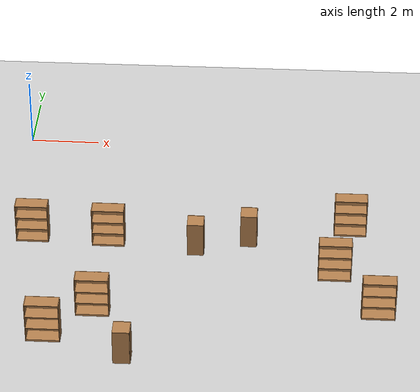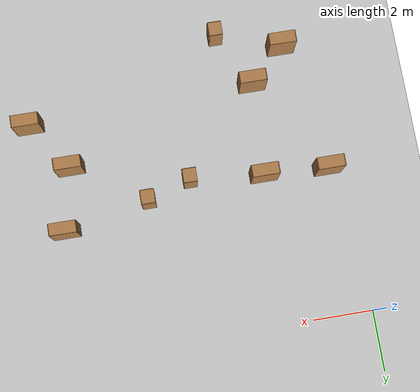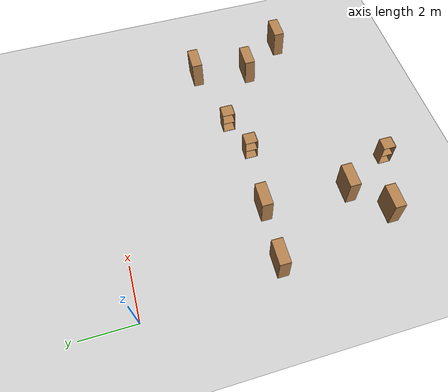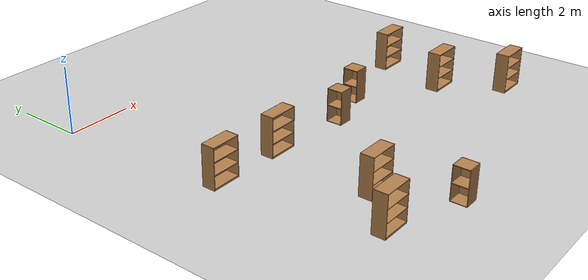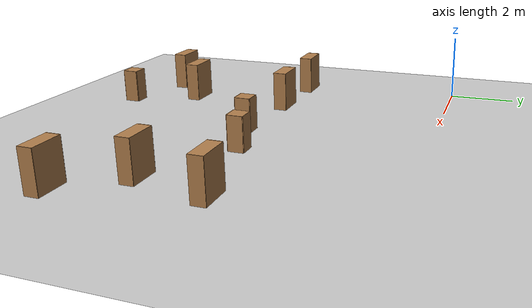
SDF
<sdf version="1.6">
 <world name="default">
  <model name="ground_plane">
   <static>1</static>
   <link name="link">
    <collision name="collision">
     <geometry><plane><normal>0 0 1</normal><size>100 100</size></plane></geometry>
     <surface><friction><ode><mu>100</mu><mu2>50</mu2></ode></friction></surface>
    </collision>
    <visual name="visual">
     <cast_shadows>0</cast_shadows>
     <geometry><plane><normal>0 0 1</normal><size>100 100</size></plane></geometry>
     <material>
      <script><uri>file://media/materials/scripts/gazebo.material</uri><name>Gazebo/Grey</name></script>
     </material>
    </visual>
   </link>
  </model>
  <model name="bookshelf_11">
   <static>1</static>
   <link name="link">
    <inertial><mass>1</mass></inertial>
    <collision name="back">
     <pose>0 0.005 0.6 0 -0 0</pose>
     <geometry><box><size>0.9 0.01 1.2</size></box></geometry>
    </collision>
    <visual name="visual1">
     <pose>0 0.005 0.6 0 -0 0</pose>
     <geometry><box><size>0.9 0.01 1.2</size></box></geometry>
     <material>
      <script><uri>file://media/materials/scripts/gazebo.material</uri><name>Gazebo/Wood</name></script>
     </material>
    </visual>
    <collision name="left_side">
     <pose>0.45 -0.195 0.6 0 -0 0</pose>
     <geometry><box><size>0.02 0.4 1.2</size></box></geometry>
    </collision>
    <visual name="visual2">
     <pose>0.45 -0.195 0.6 0 -0 0</pose>
     <geometry><box><size>0.02 0.4 1.2</size></box></geometry>
     <material>
      <script><uri>file://media/materials/scripts/gazebo.material</uri><name>Gazebo/Wood</name></script>
     </material>
    </visual>
    <collision name="right_side">
     <pose>-0.45 -0.195 0.6 0 -0 0</pose>
     <geometry><box><size>0.02 0.4 1.2</size></box></geometry>
    </collision>
    <visual name="visual3">
     <pose>-0.45 -0.195 0.6 0 -0 0</pose>
     <geometry><box><size>0.02 0.4 1.2</size></box></geometry>
     <material>
      <script><uri>file://media/materials/scripts/gazebo.material</uri><name>Gazebo/Wood</name></script>
     </material>
    </visual>
    <collision name="bottom">
     <pose>0 -0.195 0.03 0 -0 0</pose>
     <geometry><box><size>0.88 0.4 0.06</size></box></geometry>
    </collision>
    <visual name="visual4">
     <pose>0 -0.195 0.03 0 -0 0</pose>
     <geometry><box><size>0.88 0.4 0.06</size></box></geometry>
     <material>
      <script><uri>file://media/materials/scripts/gazebo.material</uri><name>Gazebo/Wood</name></script>
     </material>
    </visual>
    <collision name="top">
     <pose>0 -0.195 1.19 0 -0 0</pose>
     <geometry><box><size>0.88 0.4 0.02</size></box></geometry>
    </collision>
    <visual name="visual5">
     <pose>0 -0.195 1.19 0 -0 0</pose>
     <geometry><box><size>0.88 0.4 0.02</size></box></geometry>
     <material>
      <script><uri>file://media/materials/scripts/gazebo.material</uri><name>Gazebo/Wood</name></script>
     </material>
    </visual>
    <collision name="low_shelf">
     <pose>0 -0.195 0.43 0 -0 0</pose>
     <geometry><box><size>0.88 0.4 0.02</size></box></geometry>
    </collision>
    <visual name="visual6">
     <pose>0 -0.195 0.43 0 -0 0</pose>
     <geometry><box><size>0.88 0.4 0.02</size></box></geometry>
     <material>
      <script><uri>file://media/materials/scripts/gazebo.material</uri><name>Gazebo/Wood</name></script>
     </material>
    </visual>
    <collision name="high_shelf">
     <pose>0 -0.195 0.8 0 -0 0</pose>
     <geometry><box><size>0.88 0.4 0.02</size></box></geometry>
    </collision>
    <visual name="visual7">
     <pose>0 -0.195 0.8 0 -0 0</pose>
     <geometry><box><size>0.88 0.4 0.02</size></box></geometry>
     <material>
      <script><uri>file://media/materials/scripts/gazebo.material</uri><name>Gazebo/Wood</name></script>
     </material>
    </visual>
   </link>
   <pose>9.58566 -3.99306 0 0 -0 0</pose>
  </model>
  <model name="bookshelf_12">
   <static>1</static>
   <link name="link">
    <inertial><mass>1</mass></inertial>
    <collision name="back">
     <pose>0 0.005 0.6 0 -0 0</pose>
     <geometry><box><size>0.9 0.01 1.2</size></box></geometry>
    </collision>
    <visual name="visual1">
     <pose>0 0.005 0.6 0 -0 0</pose>
     <geometry><box><size>0.9 0.01 1.2</size></box></geometry>
     <material>
      <script><uri>file://media/materials/scripts/gazebo.material</uri><name>Gazebo/Wood</name></script>
     </material>
    </visual>
    <collision name="left_side">
     <pose>0.45 -0.195 0.6 0 -0 0</pose>
     <geometry><box><size>0.02 0.4 1.2</size></box></geometry>
    </collision>
    <visual name="visual2">
     <pose>0.45 -0.195 0.6 0 -0 0</pose>
     <geometry><box><size>0.02 0.4 1.2</size></box></geometry>
     <material>
      <script><uri>file://media/materials/scripts/gazebo.material</uri><name>Gazebo/Wood</name></script>
     </material>
    </visual>
    <collision name="right_side">
     <pose>-0.45 -0.195 0.6 0 -0 0</pose>
     <geometry><box><size>0.02 0.4 1.2</size></box></geometry>
    </collision>
    <visual name="visual3">
     <pose>-0.45 -0.195 0.6 0 -0 0</pose>
     <geometry><box><size>0.02 0.4 1.2</size></box></geometry>
     <material>
      <script><uri>file://media/materials/scripts/gazebo.material</uri><name>Gazebo/Wood</name></script>
     </material>
    </visual>
    <collision name="bottom">
     <pose>0 -0.195 0.03 0 -0 0</pose>
     <geometry><box><size>0.88 0.4 0.06</size></box></geometry>
    </collision>
    <visual name="visual4">
     <pose>0 -0.195 0.03 0 -0 0</pose>
     <geometry><box><size>0.88 0.4 0.06</size></box></geometry>
     <material>
      <script><uri>file://media/materials/scripts/gazebo.material</uri><name>Gazebo/Wood</name></script>
     </material>
    </visual>
    <collision name="top">
     <pose>0 -0.195 1.19 0 -0 0</pose>
     <geometry><box><size>0.88 0.4 0.02</size></box></geometry>
    </collision>
    <visual name="visual5">
     <pose>0 -0.195 1.19 0 -0 0</pose>
     <geometry><box><size>0.88 0.4 0.02</size></box></geometry>
     <material>
      <script><uri>file://media/materials/scripts/gazebo.material</uri><name>Gazebo/Wood</name></script>
     </material>
    </visual>
    <collision name="low_shelf">
     <pose>0 -0.195 0.43 0 -0 0</pose>
     <geometry><box><size>0.88 0.4 0.02</size></box></geometry>
    </collision>
    <visual name="visual6">
     <pose>0 -0.195 0.43 0 -0 0</pose>
     <geometry><box><size>0.88 0.4 0.02</size></box></geometry>
     <material>
      <script><uri>file://media/materials/scripts/gazebo.material</uri><name>Gazebo/Wood</name></script>
     </material>
    </visual>
    <collision name="high_shelf">
     <pose>0 -0.195 0.8 0 -0 0</pose>
     <geometry><box><size>0.88 0.4 0.02</size></box></geometry>
    </collision>
    <visual name="visual7">
     <pose>0 -0.195 0.8 0 -0 0</pose>
     <geometry><box><size>0.88 0.4 0.02</size></box></geometry>
     <material>
      <script><uri>file://media/materials/scripts/gazebo.material</uri><name>Gazebo/Wood</name></script>
     </material>
    </visual>
   </link>
   <pose>9.15205 -6.10619 0 0 -0 0</pose>
  </model>
  <model name="bookshelf_13">
   <static>1</static>
   <link name="link">
    <inertial><mass>1</mass></inertial>
    <collision name="back">
     <pose>0 0.005 0.6 0 -0 0</pose>
     <geometry><box><size>0.9 0.01 1.2</size></box></geometry>
    </collision>
    <visual name="visual1">
     <pose>0 0.005 0.6 0 -0 0</pose>
     <geometry><box><size>0.9 0.01 1.2</size></box></geometry>
     <material>
      <script><uri>file://media/materials/scripts/gazebo.material</uri><name>Gazebo/Wood</name></script>
     </material>
    </visual>
    <collision name="left_side">
     <pose>0.45 -0.195 0.6 0 -0 0</pose>
     <geometry><box><size>0.02 0.4 1.2</size></box></geometry>
    </collision>
    <visual name="visual2">
     <pose>0.45 -0.195 0.6 0 -0 0</pose>
     <geometry><box><size>0.02 0.4 1.2</size></box></geometry>
     <material>
      <script><uri>file://media/materials/scripts/gazebo.material</uri><name>Gazebo/Wood</name></script>
     </material>
    </visual>
    <collision name="right_side">
     <pose>-0.45 -0.195 0.6 0 -0 0</pose>
     <geometry><box><size>0.02 0.4 1.2</size></box></geometry>
    </collision>
    <visual name="visual3">
     <pose>-0.45 -0.195 0.6 0 -0 0</pose>
     <geometry><box><size>0.02 0.4 1.2</size></box></geometry>
     <material>
      <script><uri>file://media/materials/scripts/gazebo.material</uri><name>Gazebo/Wood</name></script>
     </material>
    </visual>
    <collision name="bottom">
     <pose>0 -0.195 0.03 0 -0 0</pose>
     <geometry><box><size>0.88 0.4 0.06</size></box></geometry>
    </collision>
    <visual name="visual4">
     <pose>0 -0.195 0.03 0 -0 0</pose>
     <geometry><box><size>0.88 0.4 0.06</size></box></geometry>
     <material>
      <script><uri>file://media/materials/scripts/gazebo.material</uri><name>Gazebo/Wood</name></script>
     </material>
    </visual>
    <collision name="top">
     <pose>0 -0.195 1.19 0 -0 0</pose>
     <geometry><box><size>0.88 0.4 0.02</size></box></geometry>
    </collision>
    <visual name="visual5">
     <pose>0 -0.195 1.19 0 -0 0</pose>
     <geometry><box><size>0.88 0.4 0.02</size></box></geometry>
     <material>
      <script><uri>file://media/materials/scripts/gazebo.material</uri><name>Gazebo/Wood</name></script>
     </material>
    </visual>
    <collision name="low_shelf">
     <pose>0 -0.195 0.43 0 -0 0</pose>
     <geometry><box><size>0.88 0.4 0.02</size></box></geometry>
    </collision>
    <visual name="visual6">
     <pose>0 -0.195 0.43 0 -0 0</pose>
     <geometry><box><size>0.88 0.4 0.02</size></box></geometry>
     <material>
      <script><uri>file://media/materials/scripts/gazebo.material</uri><name>Gazebo/Wood</name></script>
     </material>
    </visual>
    <collision name="high_shelf">
     <pose>0 -0.195 0.8 0 -0 0</pose>
     <geometry><box><size>0.88 0.4 0.02</size></box></geometry>
    </collision>
    <visual name="visual7">
     <pose>0 -0.195 0.8 0 -0 0</pose>
     <geometry><box><size>0.88 0.4 0.02</size></box></geometry>
     <material>
      <script><uri>file://media/materials/scripts/gazebo.material</uri><name>Gazebo/Wood</name></script>
     </material>
    </visual>
   </link>
   <pose>10.3318 -7.74978 0 0 -0 0</pose>
  </model>
  <model name="bookshelf_14">
   <static>1</static>
   <link name="link">
    <inertial><mass>1</mass></inertial>
    <collision name="back">
     <pose>0 0.005 0.6 0 -0 0</pose>
     <geometry><box><size>0.9 0.01 1.2</size></box></geometry>
    </collision>
    <visual name="visual1">
     <pose>0 0.005 0.6 0 -0 0</pose>
     <geometry><box><size>0.9 0.01 1.2</size></box></geometry>
     <material>
      <script><uri>file://media/materials/scripts/gazebo.material</uri><name>Gazebo/Wood</name></script>
     </material>
    </visual>
    <collision name="left_side">
     <pose>0.45 -0.195 0.6 0 -0 0</pose>
     <geometry><box><size>0.02 0.4 1.2</size></box></geometry>
    </collision>
    <visual name="visual2">
     <pose>0.45 -0.195 0.6 0 -0 0</pose>
     <geometry><box><size>0.02 0.4 1.2</size></box></geometry>
     <material>
      <script><uri>file://media/materials/scripts/gazebo.material</uri><name>Gazebo/Wood</name></script>
     </material>
    </visual>
    <collision name="right_side">
     <pose>-0.45 -0.195 0.6 0 -0 0</pose>
     <geometry><box><size>0.02 0.4 1.2</size></box></geometry>
    </collision>
    <visual name="visual3">
     <pose>-0.45 -0.195 0.6 0 -0 0</pose>
     <geometry><box><size>0.02 0.4 1.2</size></box></geometry>
     <material>
      <script><uri>file://media/materials/scripts/gazebo.material</uri><name>Gazebo/Wood</name></script>
     </material>
    </visual>
    <collision name="bottom">
     <pose>0 -0.195 0.03 0 -0 0</pose>
     <geometry><box><size>0.88 0.4 0.06</size></box></geometry>
    </collision>
    <visual name="visual4">
     <pose>0 -0.195 0.03 0 -0 0</pose>
     <geometry><box><size>0.88 0.4 0.06</size></box></geometry>
     <material>
      <script><uri>file://media/materials/scripts/gazebo.material</uri><name>Gazebo/Wood</name></script>
     </material>
    </visual>
    <collision name="top">
     <pose>0 -0.195 1.19 0 -0 0</pose>
     <geometry><box><size>0.88 0.4 0.02</size></box></geometry>
    </collision>
    <visual name="visual5">
     <pose>0 -0.195 1.19 0 -0 0</pose>
     <geometry><box><size>0.88 0.4 0.02</size></box></geometry>
     <material>
      <script><uri>file://media/materials/scripts/gazebo.material</uri><name>Gazebo/Wood</name></script>
     </material>
    </visual>
    <collision name="low_shelf">
     <pose>0 -0.195 0.43 0 -0 0</pose>
     <geometry><box><size>0.88 0.4 0.02</size></box></geometry>
    </collision>
    <visual name="visual6">
     <pose>0 -0.195 0.43 0 -0 0</pose>
     <geometry><box><size>0.88 0.4 0.02</size></box></geometry>
     <material>
      <script><uri>file://media/materials/scripts/gazebo.material</uri><name>Gazebo/Wood</name></script>
     </material>
    </visual>
    <collision name="high_shelf">
     <pose>0 -0.195 0.8 0 -0 0</pose>
     <geometry><box><size>0.88 0.4 0.02</size></box></geometry>
    </collision>
    <visual name="visual7">
     <pose>0 -0.195 0.8 0 -0 0</pose>
     <geometry><box><size>0.88 0.4 0.02</size></box></geometry>
     <material>
      <script><uri>file://media/materials/scripts/gazebo.material</uri><name>Gazebo/Wood</name></script>
     </material>
    </visual>
   </link>
   <pose>2.65393 -8.01215 0 0 -0 0</pose>
  </model>
  <model name="bookshelf_15">
   <static>1</static>
   <link name="link">
    <inertial><mass>1</mass></inertial>
    <collision name="back">
     <pose>0 0.005 0.6 0 -0 0</pose>
     <geometry><box><size>0.9 0.01 1.2</size></box></geometry>
    </collision>
    <visual name="visual1">
     <pose>0 0.005 0.6 0 -0 0</pose>
     <geometry><box><size>0.9 0.01 1.2</size></box></geometry>
     <material>
      <script><uri>file://media/materials/scripts/gazebo.material</uri><name>Gazebo/Wood</name></script>
     </material>
    </visual>
    <collision name="left_side">
     <pose>0.45 -0.195 0.6 0 -0 0</pose>
     <geometry><box><size>0.02 0.4 1.2</size></box></geometry>
    </collision>
    <visual name="visual2">
     <pose>0.45 -0.195 0.6 0 -0 0</pose>
     <geometry><box><size>0.02 0.4 1.2</size></box></geometry>
     <material>
      <script><uri>file://media/materials/scripts/gazebo.material</uri><name>Gazebo/Wood</name></script>
     </material>
    </visual>
    <collision name="right_side">
     <pose>-0.45 -0.195 0.6 0 -0 0</pose>
     <geometry><box><size>0.02 0.4 1.2</size></box></geometry>
    </collision>
    <visual name="visual3">
     <pose>-0.45 -0.195 0.6 0 -0 0</pose>
     <geometry><box><size>0.02 0.4 1.2</size></box></geometry>
     <material>
      <script><uri>file://media/materials/scripts/gazebo.material</uri><name>Gazebo/Wood</name></script>
     </material>
    </visual>
    <collision name="bottom">
     <pose>0 -0.195 0.03 0 -0 0</pose>
     <geometry><box><size>0.88 0.4 0.06</size></box></geometry>
    </collision>
    <visual name="visual4">
     <pose>0 -0.195 0.03 0 -0 0</pose>
     <geometry><box><size>0.88 0.4 0.06</size></box></geometry>
     <material>
      <script><uri>file://media/materials/scripts/gazebo.material</uri><name>Gazebo/Wood</name></script>
     </material>
    </visual>
    <collision name="top">
     <pose>0 -0.195 1.19 0 -0 0</pose>
     <geometry><box><size>0.88 0.4 0.02</size></box></geometry>
    </collision>
    <visual name="visual5">
     <pose>0 -0.195 1.19 0 -0 0</pose>
     <geometry><box><size>0.88 0.4 0.02</size></box></geometry>
     <material>
      <script><uri>file://media/materials/scripts/gazebo.material</uri><name>Gazebo/Wood</name></script>
     </material>
    </visual>
    <collision name="low_shelf">
     <pose>0 -0.195 0.43 0 -0 0</pose>
     <geometry><box><size>0.88 0.4 0.02</size></box></geometry>
    </collision>
    <visual name="visual6">
     <pose>0 -0.195 0.43 0 -0 0</pose>
     <geometry><box><size>0.88 0.4 0.02</size></box></geometry>
     <material>
      <script><uri>file://media/materials/scripts/gazebo.material</uri><name>Gazebo/Wood</name></script>
     </material>
    </visual>
    <collision name="high_shelf">
     <pose>0 -0.195 0.8 0 -0 0</pose>
     <geometry><box><size>0.88 0.4 0.02</size></box></geometry>
    </collision>
    <visual name="visual7">
     <pose>0 -0.195 0.8 0 -0 0</pose>
     <geometry><box><size>0.88 0.4 0.02</size></box></geometry>
     <material>
      <script><uri>file://media/materials/scripts/gazebo.material</uri><name>Gazebo/Wood</name></script>
     </material>
    </visual>
   </link>
   <pose>1.45592 -9.16354 0 0 -0 0</pose>
  </model>
  <model name="cabinet_3">
   <static>1</static>
   <link name="cabinet_bottom_plate">
    <inertial>
     <pose>0 0 -1 0 -0 0</pose>
     <inertia><ixx>2.05</ixx><ixy>0</ixy><ixz>0</ixz><iyy>2.05</iyy><iyz>0</iyz><izz>2.05</izz></inertia>
     <mass>25</mass>
    </inertial>
    <collision name="cabinet_bottom_plate_geom">
     <pose>0 0 0.01 0 -0 0</pose>
     <geometry><box><size>0.45 0.45 0.02</size></box></geometry>
    </collision>
    <visual name="cabinet_bottom_plate_geom_visual">
     <pose>0 0 0.01 0 -0 0</pose>
     <geometry><box><size>0.45 0.45 0.02</size></box></geometry>
     <material>
      <script><uri>file://media/materials/scripts/gazebo.material</uri><name>Gazebo/Wood</name></script>
     </material>
    </visual>
    <collision name="cabinet_bottom_plate_geom_cabinet_back_plate">
     <pose>0.235 0 0.51 0 -0 0</pose>
     <geometry><box><size>0.02 0.45 1.02</size></box></geometry>
    </collision>
    <visual name="cabinet_bottom_plate_geom_cabinet_back_plate_visual">
     <pose>0.235 0 0.51 0 -0 0</pose>
     <geometry><box><size>0.02 0.45 1.02</size></box></geometry>
     <material>
      <script><uri>file://media/materials/scripts/gazebo.material</uri><name>Gazebo/Wood</name></script>
     </material>
    </visual>
    <collision name="cabinet_bottom_plate_geom_cabinet_left_plate">
     <pose>0 0.235 0.51 0 -0 0</pose>
     <geometry><box><size>0.45 0.02 1.02</size></box></geometry>
    </collision>
    <visual name="cabinet_bottom_plate_geom_cabinet_left_plate_visual">
     <pose>0 0.235 0.51 0 -0 0</pose>
     <geometry><box><size>0.45 0.02 1.02</size></box></geometry>
     <material>
      <script><uri>file://media/materials/scripts/gazebo.material</uri><name>Gazebo/Wood</name></script>
     </material>
    </visual>
    <collision name="cabinet_bottom_plate_geom_cabinet_middle_plate">
     <pose>0 0 0.51 0 -0 0</pose>
     <geometry><box><size>0.45 0.45 0.02</size></box></geometry>
    </collision>
    <visual name="cabinet_bottom_plate_geom_cabinet_middle_plate_visual">
     <pose>0 0 0.51 0 -0 0</pose>
     <geometry><box><size>0.45 0.45 0.02</size></box></geometry>
     <material>
      <script><uri>file://media/materials/scripts/gazebo.material</uri><name>Gazebo/Wood</name></script>
     </material>
    </visual>
    <collision name="cabinet_bottom_plate_geom_cabinet_right_plate">
     <pose>0 -0.235 0.51 0 -0 0</pose>
     <geometry><box><size>0.45 0.02 1.02</size></box></geometry>
    </collision>
    <visual name="cabinet_bottom_plate_geom_cabinet_right_plate_visual">
     <pose>0 -0.235 0.51 0 -0 0</pose>
     <geometry><box><size>0.45 0.02 1.02</size></box></geometry>
     <material>
      <script><uri>file://media/materials/scripts/gazebo.material</uri><name>Gazebo/Wood</name></script>
     </material>
    </visual>
    <collision name="cabinet_bottom_plate_geom_cabinet_top_plate">
     <pose>0 0 1.01 0 -0 0</pose>
     <geometry><box><size>0.45 0.45 0.02</size></box></geometry>
    </collision>
    <visual name="cabinet_bottom_plate_geom_cabinet_top_plate_visual">
     <pose>0 0 1.01 0 -0 0</pose>
     <geometry><box><size>0.45 0.45 0.02</size></box></geometry>
     <material>
      <script><uri>file://media/materials/scripts/gazebo.material</uri><name>Gazebo/Wood</name></script>
     </material>
    </visual>
   </link>
   <pose>3.60937 -10.0961 0 0 -0 0</pose>
  </model>
  <model name="bookshelf_34">
   <static>1</static>
   <link name="link">
    <inertial><mass>1</mass></inertial>
    <collision name="back">
     <pose>0 0.005 0.6 0 -0 0</pose>
     <geometry><box><size>0.9 0.01 1.2</size></box></geometry>
    </collision>
    <visual name="visual1">
     <pose>0 0.005 0.6 0 -0 0</pose>
     <geometry><box><size>0.9 0.01 1.2</size></box></geometry>
     <material>
      <script><uri>file://media/materials/scripts/gazebo.material</uri><name>Gazebo/Wood</name></script>
     </material>
    </visual>
    <collision name="left_side">
     <pose>0.45 -0.195 0.6 0 -0 0</pose>
     <geometry><box><size>0.02 0.4 1.2</size></box></geometry>
    </collision>
    <visual name="visual2">
     <pose>0.45 -0.195 0.6 0 -0 0</pose>
     <geometry><box><size>0.02 0.4 1.2</size></box></geometry>
     <material>
      <script><uri>file://media/materials/scripts/gazebo.material</uri><name>Gazebo/Wood</name></script>
     </material>
    </visual>
    <collision name="right_side">
     <pose>-0.45 -0.195 0.6 0 -0 0</pose>
     <geometry><box><size>0.02 0.4 1.2</size></box></geometry>
    </collision>
    <visual name="visual3">
     <pose>-0.45 -0.195 0.6 0 -0 0</pose>
     <geometry><box><size>0.02 0.4 1.2</size></box></geometry>
     <material>
      <script><uri>file://media/materials/scripts/gazebo.material</uri><name>Gazebo/Wood</name></script>
     </material>
    </visual>
    <collision name="bottom">
     <pose>0 -0.195 0.03 0 -0 0</pose>
     <geometry><box><size>0.88 0.4 0.06</size></box></geometry>
    </collision>
    <visual name="visual4">
     <pose>0 -0.195 0.03 0 -0 0</pose>
     <geometry><box><size>0.88 0.4 0.06</size></box></geometry>
     <material>
      <script><uri>file://media/materials/scripts/gazebo.material</uri><name>Gazebo/Wood</name></script>
     </material>
    </visual>
    <collision name="top">
     <pose>0 -0.195 1.19 0 -0 0</pose>
     <geometry><box><size>0.88 0.4 0.02</size></box></geometry>
    </collision>
    <visual name="visual5">
     <pose>0 -0.195 1.19 0 -0 0</pose>
     <geometry><box><size>0.88 0.4 0.02</size></box></geometry>
     <material>
      <script><uri>file://media/materials/scripts/gazebo.material</uri><name>Gazebo/Wood</name></script>
     </material>
    </visual>
    <collision name="low_shelf">
     <pose>0 -0.195 0.43 0 -0 0</pose>
     <geometry><box><size>0.88 0.4 0.02</size></box></geometry>
    </collision>
    <visual name="visual6">
     <pose>0 -0.195 0.43 0 -0 0</pose>
     <geometry><box><size>0.88 0.4 0.02</size></box></geometry>
     <material>
      <script><uri>file://media/materials/scripts/gazebo.material</uri><name>Gazebo/Wood</name></script>
     </material>
    </visual>
    <collision name="high_shelf">
     <pose>0 -0.195 0.8 0 -0 0</pose>
     <geometry><box><size>0.88 0.4 0.02</size></box></geometry>
    </collision>
    <visual name="visual7">
     <pose>0 -0.195 0.8 0 -0 0</pose>
     <geometry><box><size>0.88 0.4 0.02</size></box></geometry>
     <material>
      <script><uri>file://media/materials/scripts/gazebo.material</uri><name>Gazebo/Wood</name></script>
     </material>
    </visual>
   </link>
   <pose>0.634946 -4.7358 0 0 -0 0</pose>
  </model>
  <model name="bookshelf_35">
   <static>1</static>
   <link name="link">
    <inertial><mass>1</mass></inertial>
    <collision name="back">
     <pose>0 0.005 0.6 0 -0 0</pose>
     <geometry><box><size>0.9 0.01 1.2</size></box></geometry>
    </collision>
    <visual name="visual1">
     <pose>0 0.005 0.6 0 -0 0</pose>
     <geometry><box><size>0.9 0.01 1.2</size></box></geometry>
     <material>
      <script><uri>file://media/materials/scripts/gazebo.material</uri><name>Gazebo/Wood</name></script>
     </material>
    </visual>
    <collision name="left_side">
     <pose>0.45 -0.195 0.6 0 -0 0</pose>
     <geometry><box><size>0.02 0.4 1.2</size></box></geometry>
    </collision>
    <visual name="visual2">
     <pose>0.45 -0.195 0.6 0 -0 0</pose>
     <geometry><box><size>0.02 0.4 1.2</size></box></geometry>
     <material>
      <script><uri>file://media/materials/scripts/gazebo.material</uri><name>Gazebo/Wood</name></script>
     </material>
    </visual>
    <collision name="right_side">
     <pose>-0.45 -0.195 0.6 0 -0 0</pose>
     <geometry><box><size>0.02 0.4 1.2</size></box></geometry>
    </collision>
    <visual name="visual3">
     <pose>-0.45 -0.195 0.6 0 -0 0</pose>
     <geometry><box><size>0.02 0.4 1.2</size></box></geometry>
     <material>
      <script><uri>file://media/materials/scripts/gazebo.material</uri><name>Gazebo/Wood</name></script>
     </material>
    </visual>
    <collision name="bottom">
     <pose>0 -0.195 0.03 0 -0 0</pose>
     <geometry><box><size>0.88 0.4 0.06</size></box></geometry>
    </collision>
    <visual name="visual4">
     <pose>0 -0.195 0.03 0 -0 0</pose>
     <geometry><box><size>0.88 0.4 0.06</size></box></geometry>
     <material>
      <script><uri>file://media/materials/scripts/gazebo.material</uri><name>Gazebo/Wood</name></script>
     </material>
    </visual>
    <collision name="top">
     <pose>0 -0.195 1.19 0 -0 0</pose>
     <geometry><box><size>0.88 0.4 0.02</size></box></geometry>
    </collision>
    <visual name="visual5">
     <pose>0 -0.195 1.19 0 -0 0</pose>
     <geometry><box><size>0.88 0.4 0.02</size></box></geometry>
     <material>
      <script><uri>file://media/materials/scripts/gazebo.material</uri><name>Gazebo/Wood</name></script>
     </material>
    </visual>
    <collision name="low_shelf">
     <pose>0 -0.195 0.43 0 -0 0</pose>
     <geometry><box><size>0.88 0.4 0.02</size></box></geometry>
    </collision>
    <visual name="visual6">
     <pose>0 -0.195 0.43 0 -0 0</pose>
     <geometry><box><size>0.88 0.4 0.02</size></box></geometry>
     <material>
      <script><uri>file://media/materials/scripts/gazebo.material</uri><name>Gazebo/Wood</name></script>
     </material>
    </visual>
    <collision name="high_shelf">
     <pose>0 -0.195 0.8 0 -0 0</pose>
     <geometry><box><size>0.88 0.4 0.02</size></box></geometry>
    </collision>
    <visual name="visual7">
     <pose>0 -0.195 0.8 0 -0 0</pose>
     <geometry><box><size>0.88 0.4 0.02</size></box></geometry>
     <material>
      <script><uri>file://media/materials/scripts/gazebo.material</uri><name>Gazebo/Wood</name></script>
     </material>
    </visual>
   </link>
   <pose>2.79196 -4.83191 0 0 -0 0</pose>
  </model>
  <model name="cabinet_53">
   <static>1</static>
   <link name="cabinet_bottom_plate">
    <inertial>
     <pose>0 0 -1 0 -0 0</pose>
     <inertia><ixx>2.05</ixx><ixy>0</ixy><ixz>0</ixz><iyy>2.05</iyy><iyz>0</iyz><izz>2.05</izz></inertia>
     <mass>25</mass>
    </inertial>
    <collision name="cabinet_bottom_plate_geom">
     <pose>0 0 0.01 0 -0 0</pose>
     <geometry><box><size>0.45 0.45 0.02</size></box></geometry>
    </collision>
    <visual name="cabinet_bottom_plate_geom_visual">
     <pose>0 0 0.01 0 -0 0</pose>
     <geometry><box><size>0.45 0.45 0.02</size></box></geometry>
     <material>
      <script><uri>file://media/materials/scripts/gazebo.material</uri><name>Gazebo/Wood</name></script>
     </material>
    </visual>
    <collision name="cabinet_bottom_plate_geom_cabinet_back_plate">
     <pose>0.235 0 0.51 0 -0 0</pose>
     <geometry><box><size>0.02 0.45 1.02</size></box></geometry>
    </collision>
    <visual name="cabinet_bottom_plate_geom_cabinet_back_plate_visual">
     <pose>0.235 0 0.51 0 -0 0</pose>
     <geometry><box><size>0.02 0.45 1.02</size></box></geometry>
     <material>
      <script><uri>file://media/materials/scripts/gazebo.material</uri><name>Gazebo/Wood</name></script>
     </material>
    </visual>
    <collision name="cabinet_bottom_plate_geom_cabinet_left_plate">
     <pose>0 0.235 0.51 0 -0 0</pose>
     <geometry><box><size>0.45 0.02 1.02</size></box></geometry>
    </collision>
    <visual name="cabinet_bottom_plate_geom_cabinet_left_plate_visual">
     <pose>0 0.235 0.51 0 -0 0</pose>
     <geometry><box><size>0.45 0.02 1.02</size></box></geometry>
     <material>
      <script><uri>file://media/materials/scripts/gazebo.material</uri><name>Gazebo/Wood</name></script>
     </material>
    </visual>
    <collision name="cabinet_bottom_plate_geom_cabinet_middle_plate">
     <pose>0 0 0.51 0 -0 0</pose>
     <geometry><box><size>0.45 0.45 0.02</size></box></geometry>
    </collision>
    <visual name="cabinet_bottom_plate_geom_cabinet_middle_plate_visual">
     <pose>0 0 0.51 0 -0 0</pose>
     <geometry><box><size>0.45 0.45 0.02</size></box></geometry>
     <material>
      <script><uri>file://media/materials/scripts/gazebo.material</uri><name>Gazebo/Wood</name></script>
     </material>
    </visual>
    <collision name="cabinet_bottom_plate_geom_cabinet_right_plate">
     <pose>0 -0.235 0.51 0 -0 0</pose>
     <geometry><box><size>0.45 0.02 1.02</size></box></geometry>
    </collision>
    <visual name="cabinet_bottom_plate_geom_cabinet_right_plate_visual">
     <pose>0 -0.235 0.51 0 -0 0</pose>
     <geometry><box><size>0.45 0.02 1.02</size></box></geometry>
     <material>
      <script><uri>file://media/materials/scripts/gazebo.material</uri><name>Gazebo/Wood</name></script>
     </material>
    </visual>
    <collision name="cabinet_bottom_plate_geom_cabinet_top_plate">
     <pose>0 0 1.01 0 -0 0</pose>
     <geometry><box><size>0.45 0.45 0.02</size></box></geometry>
    </collision>
    <visual name="cabinet_bottom_plate_geom_cabinet_top_plate_visual">
     <pose>0 0 1.01 0 -0 0</pose>
     <geometry><box><size>0.45 0.45 0.02</size></box></geometry>
     <material>
      <script><uri>file://media/materials/scripts/gazebo.material</uri><name>Gazebo/Wood</name></script>
     </material>
    </visual>
   </link>
   <pose>5.25526 -5.26852 0 0 -0 0</pose>
  </model>
  <model name="cabinet_60">
   <static>1</static>
   <link name="cabinet_bottom_plate">
    <inertial>
     <pose>0 0 -1 0 -0 0</pose>
     <inertia><ixx>2.05</ixx><ixy>0</ixy><ixz>0</ixz><iyy>2.05</iyy><iyz>0</iyz><izz>2.05</izz></inertia>
     <mass>25</mass>
    </inertial>
    <collision name="cabinet_bottom_plate_geom">
     <pose>0 0 0.01 0 -0 0</pose>
     <geometry><box><size>0.45 0.45 0.02</size></box></geometry>
    </collision>
    <visual name="cabinet_bottom_plate_geom_visual">
     <pose>0 0 0.01 0 -0 0</pose>
     <geometry><box><size>0.45 0.45 0.02</size></box></geometry>
     <material>
      <script><uri>file://media/materials/scripts/gazebo.material</uri><name>Gazebo/Wood</name></script>
     </material>
    </visual>
    <collision name="cabinet_bottom_plate_geom_cabinet_back_plate">
     <pose>0.235 0 0.51 0 -0 0</pose>
     <geometry><box><size>0.02 0.45 1.02</size></box></geometry>
    </collision>
    <visual name="cabinet_bottom_plate_geom_cabinet_back_plate_visual">
     <pose>0.235 0 0.51 0 -0 0</pose>
     <geometry><box><size>0.02 0.45 1.02</size></box></geometry>
     <material>
      <script><uri>file://media/materials/scripts/gazebo.material</uri><name>Gazebo/Wood</name></script>
     </material>
    </visual>
    <collision name="cabinet_bottom_plate_geom_cabinet_left_plate">
     <pose>0 0.235 0.51 0 -0 0</pose>
     <geometry><box><size>0.45 0.02 1.02</size></box></geometry>
    </collision>
    <visual name="cabinet_bottom_plate_geom_cabinet_left_plate_visual">
     <pose>0 0.235 0.51 0 -0 0</pose>
     <geometry><box><size>0.45 0.02 1.02</size></box></geometry>
     <material>
      <script><uri>file://media/materials/scripts/gazebo.material</uri><name>Gazebo/Wood</name></script>
     </material>
    </visual>
    <collision name="cabinet_bottom_plate_geom_cabinet_middle_plate">
     <pose>0 0 0.51 0 -0 0</pose>
     <geometry><box><size>0.45 0.45 0.02</size></box></geometry>
    </collision>
    <visual name="cabinet_bottom_plate_geom_cabinet_middle_plate_visual">
     <pose>0 0 0.51 0 -0 0</pose>
     <geometry><box><size>0.45 0.45 0.02</size></box></geometry>
     <material>
      <script><uri>file://media/materials/scripts/gazebo.material</uri><name>Gazebo/Wood</name></script>
     </material>
    </visual>
    <collision name="cabinet_bottom_plate_geom_cabinet_right_plate">
     <pose>0 -0.235 0.51 0 -0 0</pose>
     <geometry><box><size>0.45 0.02 1.02</size></box></geometry>
    </collision>
    <visual name="cabinet_bottom_plate_geom_cabinet_right_plate_visual">
     <pose>0 -0.235 0.51 0 -0 0</pose>
     <geometry><box><size>0.45 0.02 1.02</size></box></geometry>
     <material>
      <script><uri>file://media/materials/scripts/gazebo.material</uri><name>Gazebo/Wood</name></script>
     </material>
    </visual>
    <collision name="cabinet_bottom_plate_geom_cabinet_top_plate">
     <pose>0 0 1.01 0 -0 0</pose>
     <geometry><box><size>0.45 0.45 0.02</size></box></geometry>
    </collision>
    <visual name="cabinet_bottom_plate_geom_cabinet_top_plate_visual">
     <pose>0 0 1.01 0 -0 0</pose>
     <geometry><box><size>0.45 0.45 0.02</size></box></geometry>
     <material>
      <script><uri>file://media/materials/scripts/gazebo.material</uri><name>Gazebo/Wood</name></script>
     </material>
    </visual>
   </link>
   <pose>6.72402 -4.79174 0 0 -0 0</pose>
  </model>
 </world>
</sdf>
